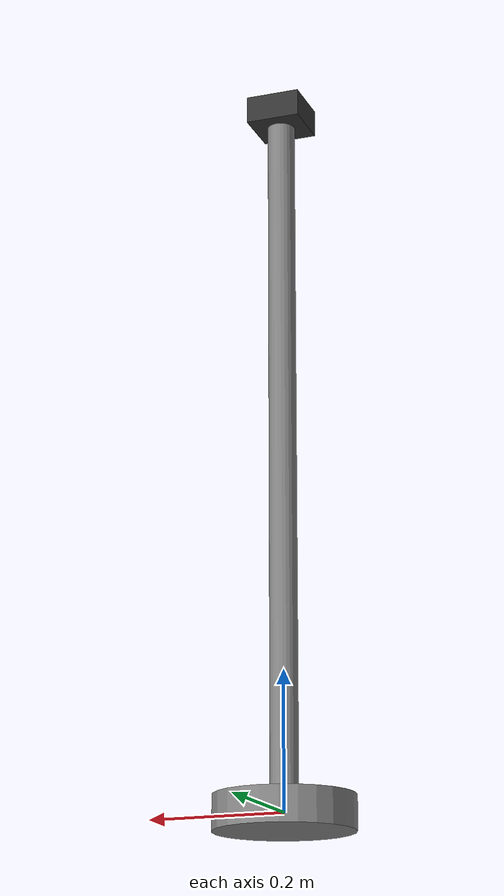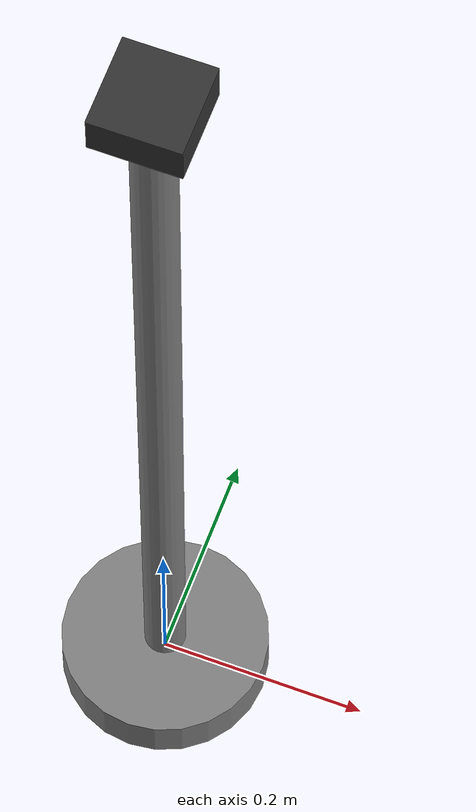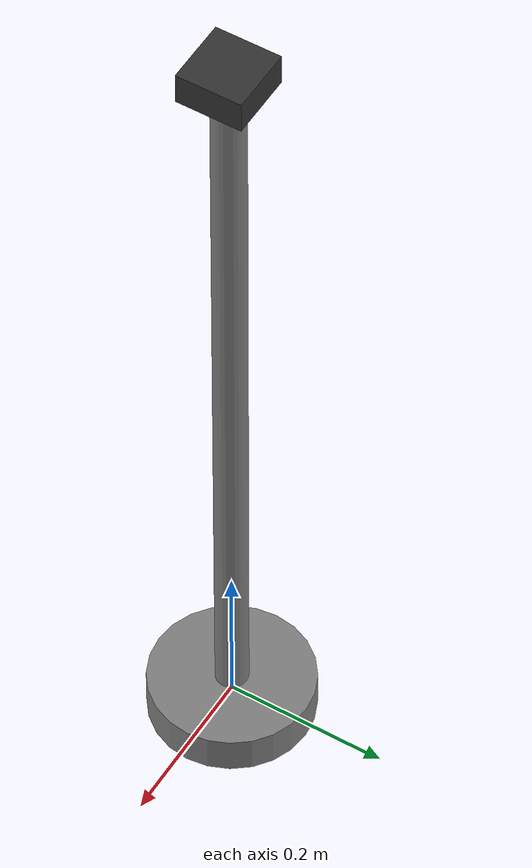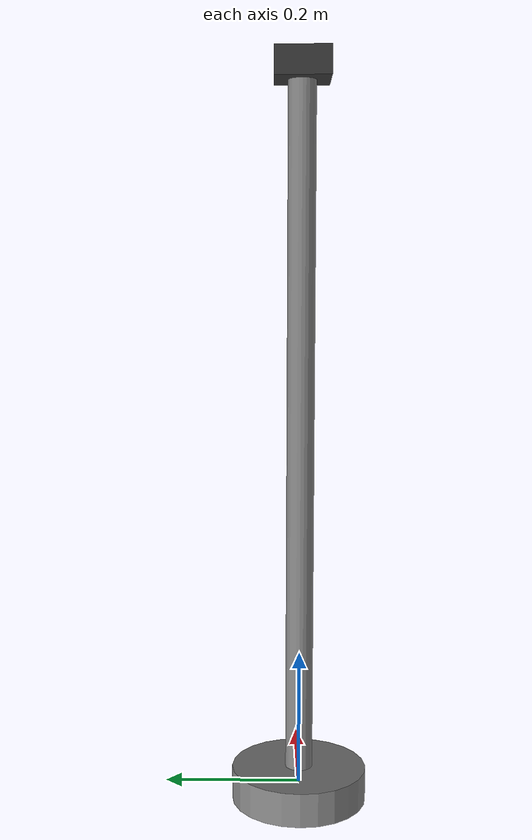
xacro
<?xml version="1.0"?>
<robot xmlns:xacro="http://www.ros.org/wiki/xacro" name="camera_mount">

  <!-- Camera mount properties -->
  <xacro:property name="pole_radius" value="0.02"/>      <!-- 20mm pole radius -->
  <xacro:property name="pole_height" value="1.0"/>       <!-- 1m height -->
  <xacro:property name="base_radius" value="0.1"/>       <!-- 100mm base radius -->
  <xacro:property name="base_height" value="0.05"/>      <!-- 50mm base height -->
  <xacro:property name="camera_box_size" value="0.08"/>  <!-- 80mm camera housing -->

  <!-- Materials -->
  <material name="mount_metal">
    <color rgba="0.5 0.5 0.5 1.0"/>  <!-- Gray metal -->
  </material>

  <material name="camera_housing">
    <color rgba="0.2 0.2 0.2 1.0"/>  <!-- Dark gray -->
  </material>

  <!-- Base plate -->
  <link name="camera_mount_base">
    <inertial>
      <origin xyz="0 0 0" rpy="0 0 0"/>
      <mass value="5.0"/>
      <inertia ixx="0.02" ixy="0" ixz="0" iyy="0.02" iyz="0" izz="0.04"/>
    </inertial>
    <visual>
      <origin xyz="0 0 0" rpy="0 0 0"/>
      <geometry>
        <cylinder radius="${base_radius}" length="${base_height}"/>
      </geometry>
      <material name="mount_metal"/>
    </visual>
    <collision>
      <origin xyz="0 0 0" rpy="0 0 0"/>
      <geometry>
        <cylinder radius="${base_radius}" length="${base_height}"/>
      </geometry>
    </collision>
  </link>

  <!-- Vertical pole -->
  <link name="camera_pole">
    <inertial>
      <origin xyz="0 0 0" rpy="0 0 0"/>
      <mass value="3.0"/>
      <inertia ixx="0.25" ixy="0" ixz="0" iyy="0.25" iyz="0" izz="0.001"/>
    </inertial>
    <visual>
      <origin xyz="0 0 0" rpy="0 0 0"/>
      <geometry>
        <cylinder radius="${pole_radius}" length="${pole_height}"/>
      </geometry>
      <material name="mount_metal"/>
    </visual>
    <collision>
      <origin xyz="0 0 0" rpy="0 0 0"/>
      <geometry>
        <cylinder radius="${pole_radius}" length="${pole_height}"/>
      </geometry>
    </collision>
  </link>

  <joint name="base_to_pole" type="fixed">
    <parent link="camera_mount_base"/>
    <child link="camera_pole"/>
    <origin xyz="0 0 ${base_height/2 + pole_height/2}" rpy="0 0 0"/>
  </joint>

  <!-- Camera housing -->
  <link name="camera_housing">
    <inertial>
      <origin xyz="0 0 0" rpy="0 0 0"/>
      <mass value="0.5"/>
      <inertia ixx="0.001" ixy="0" ixz="0" iyy="0.001" iyz="0" izz="0.001"/>
    </inertial>
    <visual>
      <origin xyz="0 0 0" rpy="0 0 0"/>
      <geometry>
        <box size="${camera_box_size} ${camera_box_size} ${camera_box_size/2}"/>
      </geometry>
      <material name="camera_housing"/>
    </visual>
    <collision>
      <origin xyz="0 0 0" rpy="0 0 0"/>
      <geometry>
        <box size="${camera_box_size} ${camera_box_size} ${camera_box_size/2}"/>
      </geometry>
    </collision>
  </link>

  <joint name="pole_to_housing" type="fixed">
    <parent link="camera_pole"/>
    <child link="camera_housing"/>
    <origin xyz="0 0 ${pole_height/2 + camera_box_size/4}" rpy="0 0 0"/>
  </joint>

  <!-- Camera link (actual camera sensor) -->
  <link name="camera_link">
    <inertial>
      <origin xyz="0 0 0" rpy="0 0 0"/>
      <mass value="0.1"/>
      <inertia ixx="0.0001" ixy="0" ixz="0" iyy="0.0001" iyz="0" izz="0.0001"/>
    </inertial>
    <visual>
      <origin xyz="0 0 0" rpy="0 0 0"/>
      <geometry>
        <cylinder radius="0.01" length="0.02"/>  <!-- Small lens -->
      </geometry>
      <material name="camera_housing"/>
    </visual>
  </link>

  <joint name="housing_to_camera" type="fixed">
    <parent link="camera_housing"/>
    <child link="camera_link"/>
    <origin xyz="0 0 ${-camera_box_size/4 - 0.01}" rpy="0 0 0"/>
  </joint>

  <!-- Camera optical frame (for computer vision) -->
  <link name="camera_optical_frame"/>

  <joint name="camera_to_optical" type="fixed">
    <parent link="camera_link"/>
    <child link="camera_optical_frame"/>
    <!-- Rotate to standard optical frame (Z forward, Y down, X right) -->
    <origin xyz="0 0 0" rpy="${-pi/2} 0 ${-pi/2}"/>
  </joint>

  <!-- Gazebo camera plugin -->
  <gazebo reference="camera_link">
    <sensor type="camera" name="chess_camera">
      <update_rate>30.0</update_rate>
      <camera name="head">
        <horizontal_fov>1.3962634</horizontal_fov>  <!-- 80 degrees -->
        <image>
          <width>1920</width>
          <height>1080</height>
          <format>R8G8B8</format>
        </image>
        <clip>
          <near>0.02</near>
          <far>10.0</far>
        </clip>
        <noise>
          <type>gaussian</type>
          <mean>0.0</mean>
          <stddev>0.007</stddev>
        </noise>
      </camera>
      <plugin name="camera_controller" filename="libgazebo_ros_camera.so">
        <alwaysOn>true</alwaysOn>
        <updateRate>0.0</updateRate>
        <cameraName>chess_camera</cameraName>
        <imageTopicName>image_raw</imageTopicName>
        <cameraInfoTopicName>camera_info</cameraInfoTopicName>
        <frameName>camera_optical_frame</frameName>
        <hackBaseline>0.07</hackBaseline>
        <distortionK1>0.0</distortionK1>
        <distortionK2>0.0</distortionK2>
        <distortionK3>0.0</distortionK3>
        <distortionT1>0.0</distortionT1>
        <distortionT2>0.0</distortionT2>
      </plugin>
    </sensor>
  </gazebo>

  <!-- Gazebo properties -->
  <gazebo reference="camera_mount_base">
    <material>Gazebo/Grey</material>
    <mu1>0.8</mu1>
    <mu2>0.8</mu2>
    <kp>1000000.0</kp>
    <kd>100.0</kd>
  </gazebo>

  <gazebo reference="camera_pole">
    <material>Gazebo/Grey</material>
  </gazebo>

  <gazebo reference="camera_housing">
    <material>Gazebo/Black</material>
  </gazebo>

</robot>
